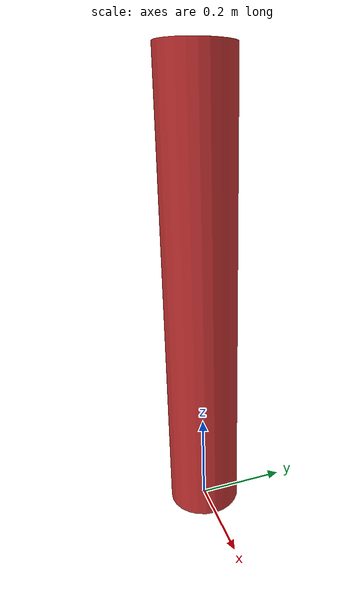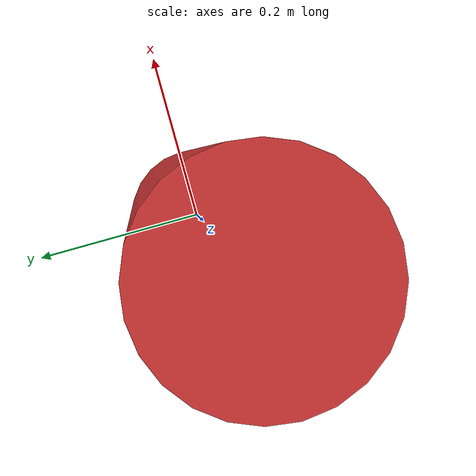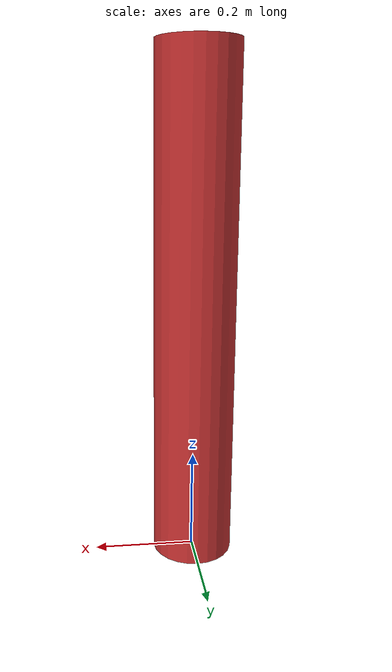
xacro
<?xml version="1.0"?>
<robot name="tall_robot" xmlns:xacro="http://www.ros.org/wiki/xacro">

    <xacro:include filename="common_macros.xacro" />

    <xacro:property name="column_length" value="1.0" />
    <xacro:property name="column_radius" value="0.08" />

    <xacro:declare_material name="red" rgba="0.8 0.2 0.2 1.0" />

    <xacro:cylinder_link
        name="column_link"
        radius="${column_radius}" length="${column_length}"
        mass="2.0" color="red" />

    <link name="base_link" />

    <joint name="base_to_column" type="fixed">
        <parent link="base_link" />
        <child link="column_link" />
        <origin xyz="0 0 0.5" rpy="0 0 0" />
    </joint>

</robot>

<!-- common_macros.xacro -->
<robot xmlns:xacro="http://www.ros.org/wiki/xacro">

    <!-- ============ 通用材质 ============ -->
    <xacro:macro name="declare_material" params="name rgba">
        <material name="${name}">
            <color rgba="${rgba}" />
        </material>
    </xacro:macro>

    <!-- ============ 长方体 link ============ -->
    <xacro:macro name="box_link" params="name length width height mass color origin:='0 0 0'">
        <link name="${name}">
            <visual>
                <geometry>
                    <box size="${length} ${width} ${height}" />
                </geometry>
                <origin xyz="${origin}" rpy="0 0 0" />
                <material name="${color}" />
            </visual>
            <collision>
                <geometry>
                    <box size="${length} ${width} ${height}" />
                </geometry>
                <origin xyz="${origin}" rpy="0 0 0" />
            </collision>
            <inertial>
                <origin xyz="${origin}" rpy="0 0 0" />
                <mass value="${mass}" />
                <inertia
                    ixx="${mass * (width*width + height*height) / 12}"
                    ixy="0.0" ixz="0.0"
                    iyy="${mass * (length*length + height*height) / 12}"
                    iyz="0.0"
                    izz="${mass * (length*length + width*width) / 12}" />
            </inertial>
        </link>
    </xacro:macro>

    <!-- ============ 圆柱 link ============ -->
    <xacro:macro name="cylinder_link" params="name radius length mass color origin:='0 0 0'">
        <link name="${name}">
            <visual>
                <geometry>
                    <cylinder radius="${radius}" length="${length}" />
                </geometry>
                <origin xyz="${origin}" rpy="0 0 0" />
                <material name="${color}" />
            </visual>
            <collision>
                <geometry>
                    <cylinder radius="${radius}" length="${length}" />
                </geometry>
                <origin xyz="${origin}" rpy="0 0 0" />
            </collision>
            <inertial>
                <origin xyz="${origin}" rpy="0 0 0" />
                <mass value="${mass}" />
                <inertia
                    ixx="${mass * (3*radius*radius + length*length) / 12}"
                    ixy="0.0" ixz="0.0"
                    iyy="${mass * (3*radius*radius + length*length) / 12}"
                    iyz="0.0"
                    izz="${mass * radius * radius / 2}" />
            </inertial>
        </link>
    </xacro:macro>

</robot>
